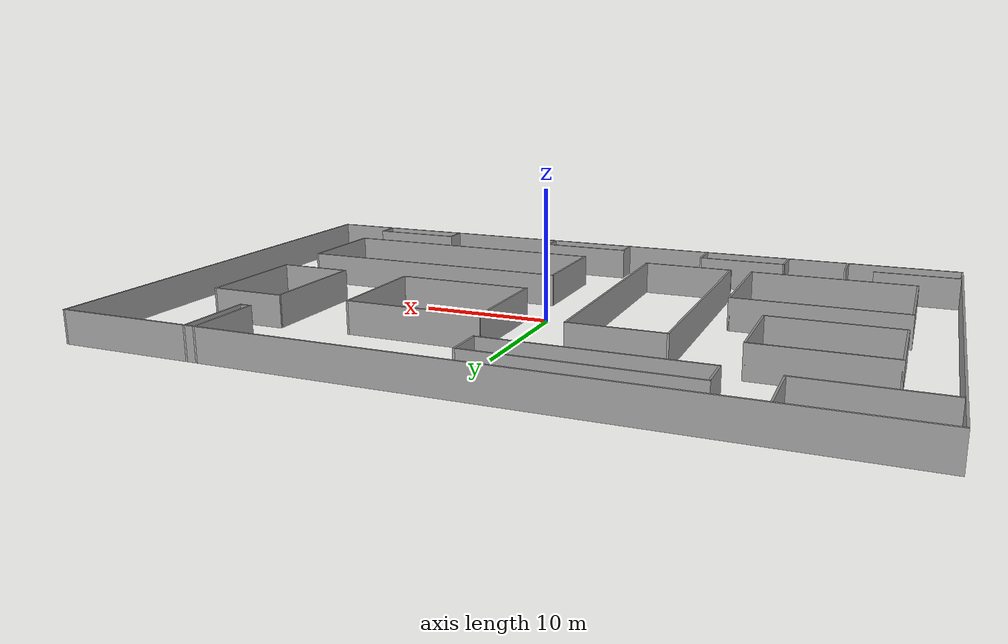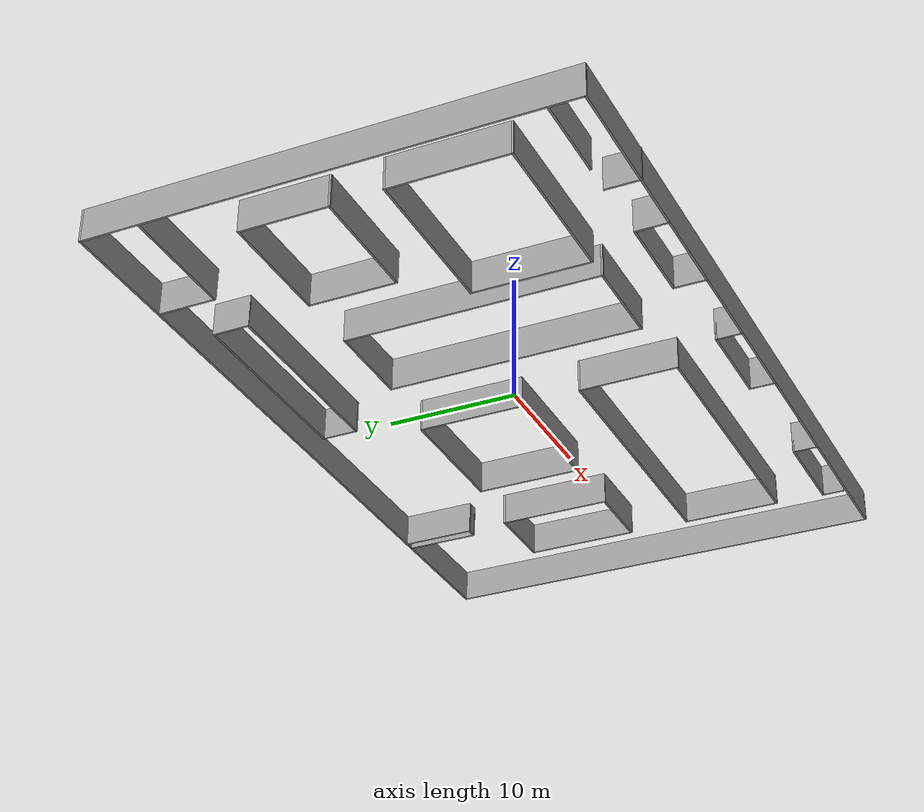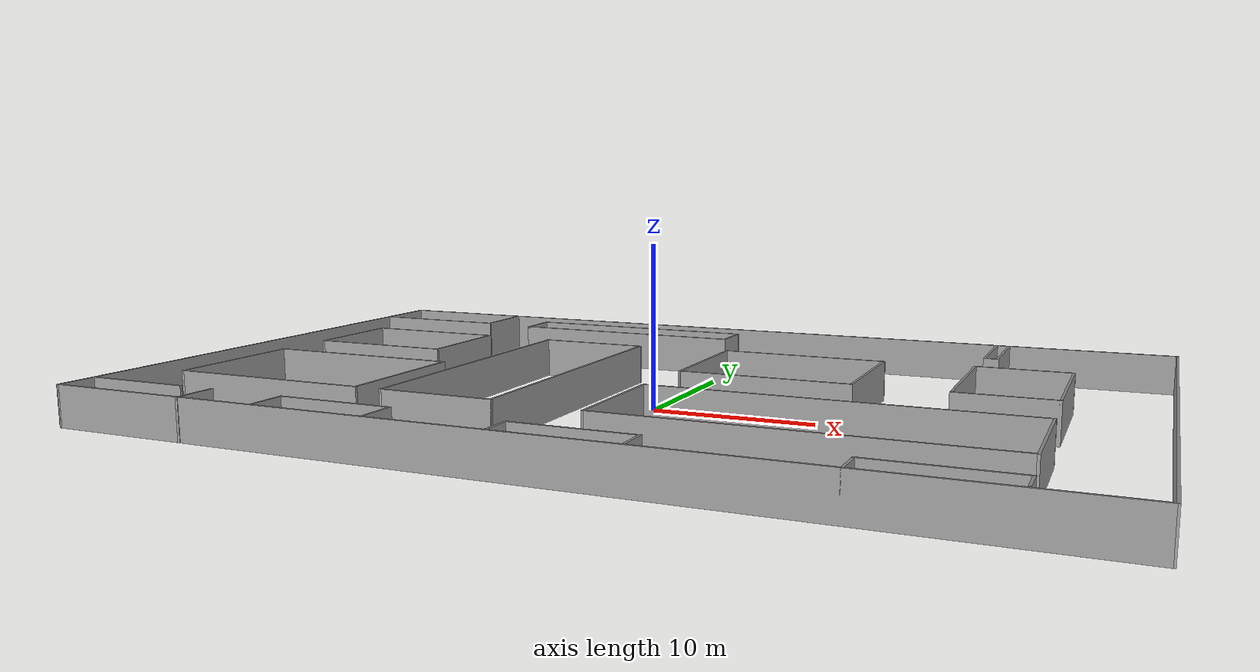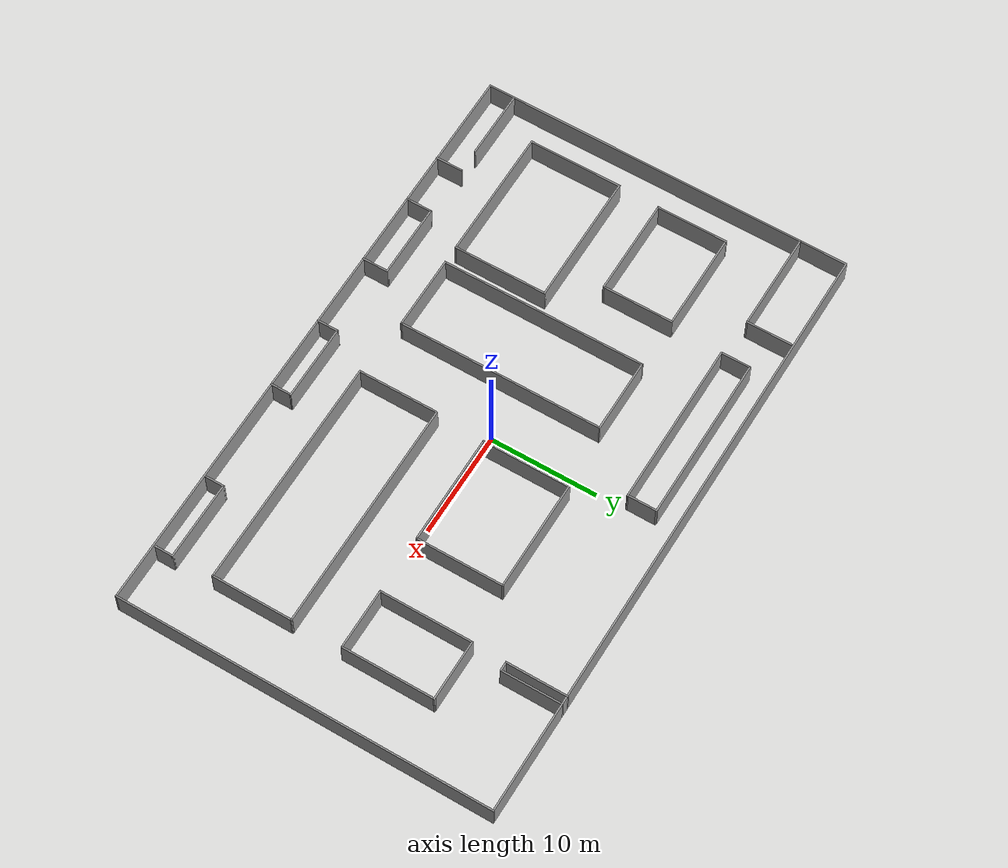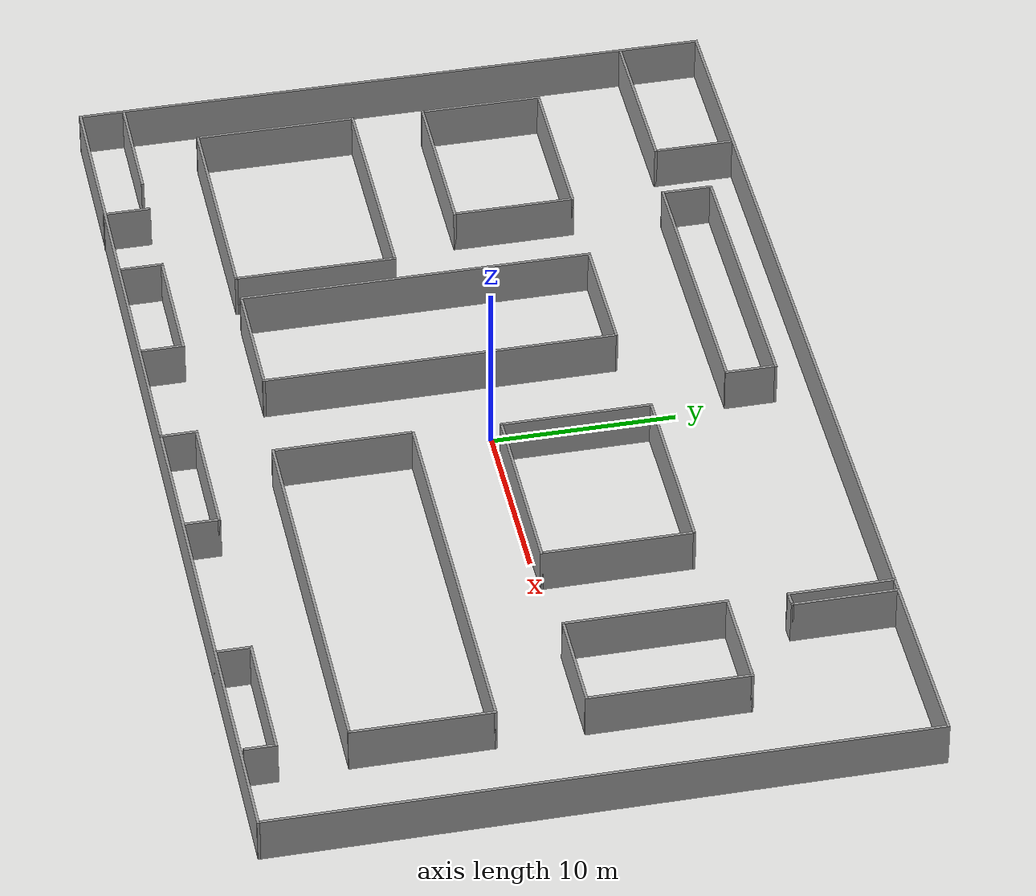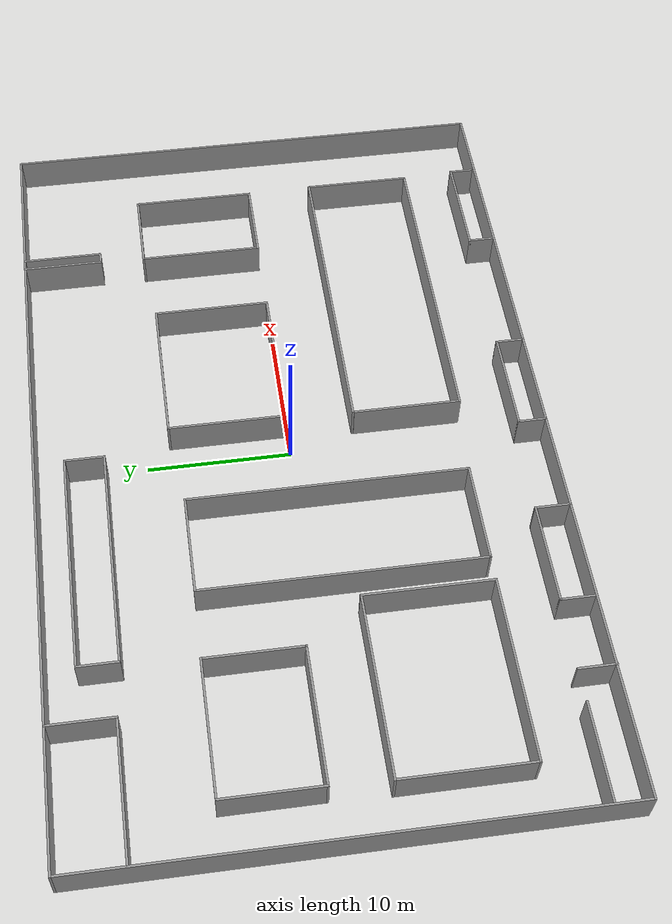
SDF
<?xml version='1.0'?>
<sdf version='1.7'>
  <model name='map_mir_multi'>
    <pose>-0.005308 -0.016489 0 0 -0 0</pose>
    <link name='Wall_0'>
      <collision name='Wall_0_Collision'>
        <geometry>
          <box>
            <size>57.75 0.15 2.5</size>
          </box>
        </geometry>
        <pose>0 0 1.25 0 -0 0</pose>
      </collision>
      <visual name='Wall_0_Visual'>
        <pose>0 0 1.25 0 -0 0</pose>
        <geometry>
          <box>
            <size>57.75 0.15 2.5</size>
          </box>
        </geometry>
        <material>
          <script>
            <uri>file://media/materials/scripts/gazebo.material</uri>
            <name>Gazebo/Grey</name>
          </script>
          <ambient>1 1 1 1</ambient>
        </material>
        <meta>
          <layer>0</layer>
        </meta>
      </visual>
      <pose>-0.005305 -17.5835 0 0 -0 0</pose>
    </link>
    <link name='Wall_1'>
      <collision name='Wall_1_Collision'>
        <geometry>
          <box>
            <size>35.35 0.15 2.5</size>
          </box>
        </geometry>
        <pose>0 0 1.25 0 -0 0</pose>
      </collision>
      <visual name='Wall_1_Visual'>
        <pose>0 0 1.25 0 -0 0</pose>
        <geometry>
          <box>
            <size>35.35 0.15 2.5</size>
          </box>
        </geometry>
        <material>
          <script>
            <uri>file://media/materials/scripts/gazebo.material</uri>
            <name>Gazebo/Grey</name>
          </script>
          <ambient>1 1 1 1</ambient>
        </material>
        <meta>
          <layer>0</layer>
        </meta>
      </visual>
      <pose>28.8 0.016489 0 0 -0 1.57049</pose>
    </link>
    <link name='Wall_10'>
      <collision name='Wall_10_Collision'>
        <geometry>
          <box>
            <size>7.15 0.15 2.5</size>
          </box>
        </geometry>
        <pose>0 0 1.25 0 -0 0</pose>
      </collision>
      <visual name='Wall_10_Visual'>
        <pose>0 0 1.25 0 -0 0</pose>
        <geometry>
          <box>
            <size>7.15 0.15 2.5</size>
          </box>
        </geometry>
        <material>
          <script>
            <uri>file://media/materials/scripts/gazebo.material</uri>
            <name>Gazebo/Grey</name>
          </script>
          <ambient>1 1 1 1</ambient>
        </material>
        <meta>
          <layer>0</layer>
        </meta>
      </visual>
      <pose>-11.5947 -15.2235 0 0 -0 0</pose>
    </link>
    <link name='Wall_11'>
      <collision name='Wall_11_Collision'>
        <geometry>
          <box>
            <size>2.5 0.15 2.5</size>
          </box>
        </geometry>
        <pose>0 0 1.25 0 -0 0</pose>
      </collision>
      <visual name='Wall_11_Visual'>
        <pose>0 0 1.25 0 -0 0</pose>
        <geometry>
          <box>
            <size>2.5 0.15 2.5</size>
          </box>
        </geometry>
        <material>
          <script>
            <uri>file://media/materials/scripts/gazebo.material</uri>
            <name>Gazebo/Grey</name>
          </script>
          <ambient>1 1 1 1</ambient>
        </material>
        <meta>
          <layer>0</layer>
        </meta>
      </visual>
      <pose>-8.09469 -16.3985 0 0 -0 -1.5708</pose>
    </link>
    <link name='Wall_13'>
      <collision name='Wall_13_Collision'>
        <geometry>
          <box>
            <size>2 0.15 2.5</size>
          </box>
        </geometry>
        <pose>0 0 1.25 0 -0 0</pose>
      </collision>
      <visual name='Wall_13_Visual'>
        <pose>0 0 1.25 0 -0 0</pose>
        <geometry>
          <box>
            <size>2 0.15 2.5</size>
          </box>
        </geometry>
        <material>
          <script>
            <uri>file://media/materials/scripts/gazebo.material</uri>
            <name>Gazebo/Grey</name>
          </script>
          <ambient>1 1 1 1</ambient>
        </material>
        <meta>
          <layer>0</layer>
        </meta>
      </visual>
      <pose>-0.994692 -16.6085 0 0 -0 1.5708</pose>
    </link>
    <link name='Wall_14'>
      <collision name='Wall_14_Collision'>
        <geometry>
          <box>
            <size>7.29 0.15 2.5</size>
          </box>
        </geometry>
        <pose>0 0 1.25 0 -0 0</pose>
      </collision>
      <visual name='Wall_14_Visual'>
        <pose>0 0 1.25 0 -0 0</pose>
        <geometry>
          <box>
            <size>7.29 0.15 2.5</size>
          </box>
        </geometry>
        <material>
          <script>
            <uri>file://media/materials/scripts/gazebo.material</uri>
            <name>Gazebo/Grey</name>
          </script>
          <ambient>1 1 1 1</ambient>
        </material>
        <meta>
          <layer>0</layer>
        </meta>
      </visual>
      <pose>2.57531 -15.6835 0 0 -0 0</pose>
    </link>
    <link name='Wall_15'>
      <collision name='Wall_15_Collision'>
        <geometry>
          <box>
            <size>2 0.15 2.5</size>
          </box>
        </geometry>
        <pose>0 0 1.25 0 -0 0</pose>
      </collision>
      <visual name='Wall_15_Visual'>
        <pose>0 0 1.25 0 -0 0</pose>
        <geometry>
          <box>
            <size>2 0.15 2.5</size>
          </box>
        </geometry>
        <material>
          <script>
            <uri>file://media/materials/scripts/gazebo.material</uri>
            <name>Gazebo/Grey</name>
          </script>
          <ambient>1 1 1 1</ambient>
        </material>
        <meta>
          <layer>0</layer>
        </meta>
      </visual>
      <pose>6.14531 -16.6085 0 0 -0 -1.5708</pose>
    </link>
    <link name='Wall_17'>
      <collision name='Wall_17_Collision'>
        <geometry>
          <box>
            <size>2 0.15 2.5</size>
          </box>
        </geometry>
        <pose>0 0 1.25 0 -0 0</pose>
      </collision>
      <visual name='Wall_17_Visual'>
        <pose>0 0 1.25 0 -0 0</pose>
        <geometry>
          <box>
            <size>2 0.15 2.5</size>
          </box>
        </geometry>
        <material>
          <script>
            <uri>file://media/materials/scripts/gazebo.material</uri>
            <name>Gazebo/Grey</name>
          </script>
          <ambient>1 1 1 1</ambient>
        </material>
        <meta>
          <layer>0</layer>
        </meta>
      </visual>
      <pose>16.1253 -16.6585 0 0 -0 1.5708</pose>
    </link>
    <link name='Wall_18'>
      <collision name='Wall_18_Collision'>
        <geometry>
          <box>
            <size>7.53 0.15 2.5</size>
          </box>
        </geometry>
        <pose>0 0 1.25 0 -0 0</pose>
      </collision>
      <visual name='Wall_18_Visual'>
        <pose>0 0 1.25 0 -0 0</pose>
        <geometry>
          <box>
            <size>7.53 0.15 2.5</size>
          </box>
        </geometry>
        <material>
          <script>
            <uri>file://media/materials/scripts/gazebo.material</uri>
            <name>Gazebo/Grey</name>
          </script>
          <ambient>1 1 1 1</ambient>
        </material>
        <meta>
          <layer>0</layer>
        </meta>
      </visual>
      <pose>19.8153 -15.7335 0 0 -0 0</pose>
    </link>
    <link name='Wall_19'>
      <collision name='Wall_19_Collision'>
        <geometry>
          <box>
            <size>1.75 0.15 2.5</size>
          </box>
        </geometry>
        <pose>0 0 1.25 0 -0 0</pose>
      </collision>
      <visual name='Wall_19_Visual'>
        <pose>0 0 1.25 0 -0 0</pose>
        <geometry>
          <box>
            <size>1.75 0.15 2.5</size>
          </box>
        </geometry>
        <material>
          <script>
            <uri>file://media/materials/scripts/gazebo.material</uri>
            <name>Gazebo/Grey</name>
          </script>
          <ambient>1 1 1 1</ambient>
        </material>
        <meta>
          <layer>0</layer>
        </meta>
      </visual>
      <pose>23.5053 -16.5335 0 0 -0 -1.5708</pose>
    </link>
    <link name='Wall_2'>
      <collision name='Wall_2_Collision'>
        <geometry>
          <box>
            <size>57.75 0.15 2.5</size>
          </box>
        </geometry>
        <pose>0 0 1.25 0 -0 0</pose>
      </collision>
      <visual name='Wall_2_Visual'>
        <pose>0 0 1.25 0 -0 0</pose>
        <geometry>
          <box>
            <size>57.75 0.15 2.5</size>
          </box>
        </geometry>
        <material>
          <script>
            <uri>file://media/materials/scripts/gazebo.material</uri>
            <name>Gazebo/Grey</name>
          </script>
          <ambient>1 1 1 1</ambient>
        </material>
        <meta>
          <layer>0</layer>
        </meta>
      </visual>
      <pose>0.005308 17.6165 0 0 -0 3.14159</pose>
    </link>
    <link name='Wall_21'>
      <collision name='Wall_21_Collision'>
        <geometry>
          <box>
            <size>7.5 0.15 2.5</size>
          </box>
        </geometry>
        <pose>0 0 1.25 0 -0 0</pose>
      </collision>
      <visual name='Wall_21_Visual'>
        <pose>0 0 1.25 0 -0 0</pose>
        <geometry>
          <box>
            <size>7.5 0.15 2.5</size>
          </box>
        </geometry>
        <material>
          <script>
            <uri>file://media/materials/scripts/gazebo.material</uri>
            <name>Gazebo/Grey</name>
          </script>
          <ambient>1 1 1 1</ambient>
        </material>
        <meta>
          <layer>0</layer>
        </meta>
      </visual>
      <pose>1.30531 -8.30851 0 0 -0 -1.5708</pose>
    </link>
    <link name='Wall_22'>
      <collision name='Wall_22_Collision'>
        <geometry>
          <box>
            <size>22.15 0.15 2.5</size>
          </box>
        </geometry>
        <pose>0 0 1.25 0 -0 0</pose>
      </collision>
      <visual name='Wall_22_Visual'>
        <pose>0 0 1.25 0 -0 0</pose>
        <geometry>
          <box>
            <size>22.15 0.15 2.5</size>
          </box>
        </geometry>
        <material>
          <script>
            <uri>file://media/materials/scripts/gazebo.material</uri>
            <name>Gazebo/Grey</name>
          </script>
          <ambient>1 1 1 1</ambient>
        </material>
        <meta>
          <layer>0</layer>
        </meta>
      </visual>
      <pose>12.3053 -11.9835 0 0 -0 0</pose>
    </link>
    <link name='Wall_23'>
      <collision name='Wall_23_Collision'>
        <geometry>
          <box>
            <size>7.65 0.15 2.5</size>
          </box>
        </geometry>
        <pose>0 0 1.25 0 -0 0</pose>
      </collision>
      <visual name='Wall_23_Visual'>
        <pose>0 0 1.25 0 -0 0</pose>
        <geometry>
          <box>
            <size>7.65 0.15 2.5</size>
          </box>
        </geometry>
        <material>
          <script>
            <uri>file://media/materials/scripts/gazebo.material</uri>
            <name>Gazebo/Grey</name>
          </script>
          <ambient>1 1 1 1</ambient>
        </material>
        <meta>
          <layer>0</layer>
        </meta>
      </visual>
      <pose>23.3053 -8.23351 0 0 -0 1.5708</pose>
    </link>
    <link name='Wall_24'>
      <collision name='Wall_24_Collision'>
        <geometry>
          <box>
            <size>22.11 0.15 2.5</size>
          </box>
        </geometry>
        <pose>0 0 1.25 0 -0 0</pose>
      </collision>
      <visual name='Wall_24_Visual'>
        <pose>0 0 1.25 0 -0 0</pose>
        <geometry>
          <box>
            <size>22.11 0.15 2.5</size>
          </box>
        </geometry>
        <material>
          <script>
            <uri>file://media/materials/scripts/gazebo.material</uri>
            <name>Gazebo/Grey</name>
          </script>
          <ambient>1 1 1 1</ambient>
        </material>
        <meta>
          <layer>0</layer>
        </meta>
      </visual>
      <pose>12.3253 -4.48351 0 0 -0 3.14159</pose>
    </link>
    <link name='Wall_26'>
      <collision name='Wall_26_Collision'>
        <geometry>
          <box>
            <size>8.25 0.15 2.5</size>
          </box>
        </geometry>
        <pose>0 0 1.25 0 -0 0</pose>
      </collision>
      <visual name='Wall_26_Visual'>
        <pose>0 0 1.25 0 -0 0</pose>
        <geometry>
          <box>
            <size>8.25 0.15 2.5</size>
          </box>
        </geometry>
        <material>
          <script>
            <uri>file://media/materials/scripts/gazebo.material</uri>
            <name>Gazebo/Grey</name>
          </script>
          <ambient>1 1 1 1</ambient>
        </material>
        <meta>
          <layer>0</layer>
        </meta>
      </visual>
      <pose>1.60531 4.26649 0 0 -0 -1.5708</pose>
    </link>
    <link name='Wall_27'>
      <collision name='Wall_27_Collision'>
        <geometry>
          <box>
            <size>10.55 0.15 2.5</size>
          </box>
        </geometry>
        <pose>0 0 1.25 0 -0 0</pose>
      </collision>
      <visual name='Wall_27_Visual'>
        <pose>0 0 1.25 0 -0 0</pose>
        <geometry>
          <box>
            <size>10.55 0.15 2.5</size>
          </box>
        </geometry>
        <material>
          <script>
            <uri>file://media/materials/scripts/gazebo.material</uri>
            <name>Gazebo/Grey</name>
          </script>
          <ambient>1 1 1 1</ambient>
        </material>
        <meta>
          <layer>0</layer>
        </meta>
      </visual>
      <pose>6.80531 0.216489 0 0 -0 0</pose>
    </link>
    <link name='Wall_28'>
      <collision name='Wall_28_Collision'>
        <geometry>
          <box>
            <size>8.25 0.15 2.5</size>
          </box>
        </geometry>
        <pose>0 0 1.25 0 -0 0</pose>
      </collision>
      <visual name='Wall_28_Visual'>
        <pose>0 0 1.25 0 -0 0</pose>
        <geometry>
          <box>
            <size>8.25 0.15 2.5</size>
          </box>
        </geometry>
        <material>
          <script>
            <uri>file://media/materials/scripts/gazebo.material</uri>
            <name>Gazebo/Grey</name>
          </script>
          <ambient>1 1 1 1</ambient>
        </material>
        <meta>
          <layer>0</layer>
        </meta>
      </visual>
      <pose>12.0053 4.26649 0 0 -0 1.5708</pose>
    </link>
    <link name='Wall_29'>
      <collision name='Wall_29_Collision'>
        <geometry>
          <box>
            <size>10.55 0.15 2.5</size>
          </box>
        </geometry>
        <pose>0 0 1.25 0 -0 0</pose>
      </collision>
      <visual name='Wall_29_Visual'>
        <pose>0 0 1.25 0 -0 0</pose>
        <geometry>
          <box>
            <size>10.55 0.15 2.5</size>
          </box>
        </geometry>
        <material>
          <script>
            <uri>file://media/materials/scripts/gazebo.material</uri>
            <name>Gazebo/Grey</name>
          </script>
          <ambient>1 1 1 1</ambient>
        </material>
        <meta>
          <layer>0</layer>
        </meta>
      </visual>
      <pose>6.80531 8.31649 0 0 -0 3.14159</pose>
    </link>
    <link name='Wall_3'>
      <collision name='Wall_3_Collision'>
        <geometry>
          <box>
            <size>35.35 0.15 2.5</size>
          </box>
        </geometry>
        <pose>0 0 1.25 0 -0 0</pose>
      </collision>
      <visual name='Wall_3_Visual'>
        <pose>0 0 1.25 0 -0 0</pose>
        <geometry>
          <box>
            <size>35.35 0.15 2.5</size>
          </box>
        </geometry>
        <material>
          <script>
            <uri>file://media/materials/scripts/gazebo.material</uri>
            <name>Gazebo/Grey</name>
          </script>
          <ambient>1 1 1 1</ambient>
        </material>
        <meta>
          <layer>0</layer>
        </meta>
      </visual>
      <pose>-28.8 0.016489 0 0 -0 -1.5711</pose>
    </link>
    <link name='Wall_31'>
      <collision name='Wall_31_Collision'>
        <geometry>
          <box>
            <size>8.75 0.15 2.5</size>
          </box>
        </geometry>
        <pose>0 0 1.25 0 -0 0</pose>
      </collision>
      <visual name='Wall_31_Visual'>
        <pose>0 0 1.25 0 -0 0</pose>
        <geometry>
          <box>
            <size>8.75 0.15 2.5</size>
          </box>
        </geometry>
        <material>
          <script>
            <uri>file://media/materials/scripts/gazebo.material</uri>
            <name>Gazebo/Grey</name>
          </script>
          <ambient>1 1 1 1</ambient>
        </material>
        <meta>
          <layer>0</layer>
        </meta>
      </visual>
      <pose>17.5053 4.51649 0 0 -0 -1.5708</pose>
    </link>
    <link name='Wall_32'>
      <collision name='Wall_32_Collision'>
        <geometry>
          <box>
            <size>5.85 0.15 2.5</size>
          </box>
        </geometry>
        <pose>0 0 1.25 0 -0 0</pose>
      </collision>
      <visual name='Wall_32_Visual'>
        <pose>0 0 1.25 0 -0 0</pose>
        <geometry>
          <box>
            <size>5.85 0.15 2.5</size>
          </box>
        </geometry>
        <material>
          <script>
            <uri>file://media/materials/scripts/gazebo.material</uri>
            <name>Gazebo/Grey</name>
          </script>
          <ambient>1 1 1 1</ambient>
        </material>
        <meta>
          <layer>0</layer>
        </meta>
      </visual>
      <pose>20.3553 0.216489 0 0 -0 0</pose>
    </link>
    <link name='Wall_33'>
      <collision name='Wall_33_Collision'>
        <geometry>
          <box>
            <size>8.75 0.15 2.5</size>
          </box>
        </geometry>
        <pose>0 0 1.25 0 -0 0</pose>
      </collision>
      <visual name='Wall_33_Visual'>
        <pose>0 0 1.25 0 -0 0</pose>
        <geometry>
          <box>
            <size>8.75 0.15 2.5</size>
          </box>
        </geometry>
        <material>
          <script>
            <uri>file://media/materials/scripts/gazebo.material</uri>
            <name>Gazebo/Grey</name>
          </script>
          <ambient>1 1 1 1</ambient>
        </material>
        <meta>
          <layer>0</layer>
        </meta>
      </visual>
      <pose>23.2053 4.51649 0 0 -0 1.5708</pose>
    </link>
    <link name='Wall_34'>
      <collision name='Wall_34_Collision'>
        <geometry>
          <box>
            <size>5.85 0.15 2.5</size>
          </box>
        </geometry>
        <pose>0 0 1.25 0 -0 0</pose>
      </collision>
      <visual name='Wall_34_Visual'>
        <pose>0 0 1.25 0 -0 0</pose>
        <geometry>
          <box>
            <size>5.85 0.15 2.5</size>
          </box>
        </geometry>
        <material>
          <script>
            <uri>file://media/materials/scripts/gazebo.material</uri>
            <name>Gazebo/Grey</name>
          </script>
          <ambient>1 1 1 1</ambient>
        </material>
        <meta>
          <layer>0</layer>
        </meta>
      </visual>
      <pose>20.3553 8.81649 0 0 -0 3.14159</pose>
    </link>
    <link name='Wall_36'>
      <collision name='Wall_36_Collision'>
        <geometry>
          <box>
            <size>19.25 0.15 2.5</size>
          </box>
        </geometry>
        <pose>0 0 1.25 0 -0 0</pose>
      </collision>
      <visual name='Wall_36_Visual'>
        <pose>0 0 1.25 0 -0 0</pose>
        <geometry>
          <box>
            <size>19.25 0.15 2.5</size>
          </box>
        </geometry>
        <material>
          <script>
            <uri>file://media/materials/scripts/gazebo.material</uri>
            <name>Gazebo/Grey</name>
          </script>
          <ambient>1 1 1 1</ambient>
        </material>
        <meta>
          <layer>0</layer>
        </meta>
      </visual>
      <pose>-4.39469 -1.93351 0 0 -0 -1.5708</pose>
    </link>
    <link name='Wall_37'>
      <collision name='Wall_37_Collision'>
        <geometry>
          <box>
            <size>7.15 0.15 2.5</size>
          </box>
        </geometry>
        <pose>0 0 1.25 0 -0 0</pose>
      </collision>
      <visual name='Wall_37_Visual'>
        <pose>0 0 1.25 0 -0 0</pose>
        <geometry>
          <box>
            <size>7.15 0.15 2.5</size>
          </box>
        </geometry>
        <material>
          <script>
            <uri>file://media/materials/scripts/gazebo.material</uri>
            <name>Gazebo/Grey</name>
          </script>
          <ambient>1 1 1 1</ambient>
        </material>
        <meta>
          <layer>0</layer>
        </meta>
      </visual>
      <pose>-7.89469 -11.4835 0 0 -0 3.14159</pose>
    </link>
    <link name='Wall_38'>
      <collision name='Wall_38_Collision'>
        <geometry>
          <box>
            <size>19.3503 0.15 2.5</size>
          </box>
        </geometry>
        <pose>0 0 1.25 0 -0 0</pose>
      </collision>
      <visual name='Wall_38_Visual'>
        <pose>0 0 1.25 0 -0 0</pose>
        <geometry>
          <box>
            <size>19.3503 0.15 2.5</size>
          </box>
        </geometry>
        <material>
          <script>
            <uri>file://media/materials/scripts/gazebo.material</uri>
            <name>Gazebo/Grey</name>
          </script>
          <ambient>1 1 1 1</ambient>
        </material>
        <meta>
          <layer>0</layer>
        </meta>
      </visual>
      <pose>-11.3947 -1.88351 0 0 -0 1.5708</pose>
    </link>
    <link name='Wall_39'>
      <collision name='Wall_39_Collision'>
        <geometry>
          <box>
            <size>7.15 0.15 2.5</size>
          </box>
        </geometry>
        <pose>0 0 1.25 0 -0 0</pose>
      </collision>
      <visual name='Wall_39_Visual'>
        <pose>0 0 1.25 0 -0 0</pose>
        <geometry>
          <box>
            <size>7.15 0.15 2.5</size>
          </box>
        </geometry>
        <material>
          <script>
            <uri>file://media/materials/scripts/gazebo.material</uri>
            <name>Gazebo/Grey</name>
          </script>
          <ambient>1 1 1 1</ambient>
        </material>
        <meta>
          <layer>0</layer>
        </meta>
      </visual>
      <pose>-7.89469 7.71649 0 0 -0 0</pose>
    </link>
    <link name='Wall_41'>
      <collision name='Wall_41_Collision'>
        <geometry>
          <box>
            <size>9.4 0.15 2.5</size>
          </box>
        </geometry>
        <pose>0 0 1.25 0 -0 0</pose>
      </collision>
      <visual name='Wall_41_Visual'>
        <pose>0 0 1.25 0 -0 0</pose>
        <geometry>
          <box>
            <size>9.4 0.15 2.5</size>
          </box>
        </geometry>
        <material>
          <script>
            <uri>file://media/materials/scripts/gazebo.material</uri>
            <name>Gazebo/Grey</name>
          </script>
          <ambient>1 1 1 1</ambient>
        </material>
        <meta>
          <layer>0</layer>
        </meta>
      </visual>
      <pose>-20.8697 7.81649 0 0 -0 0</pose>
    </link>
    <link name='Wall_42'>
      <collision name='Wall_42_Collision'>
        <geometry>
          <box>
            <size>6.75 0.15 2.5</size>
          </box>
        </geometry>
        <pose>0 0 1.25 0 -0 0</pose>
      </collision>
      <visual name='Wall_42_Visual'>
        <pose>0 0 1.25 0 -0 0</pose>
        <geometry>
          <box>
            <size>6.75 0.15 2.5</size>
          </box>
        </geometry>
        <material>
          <script>
            <uri>file://media/materials/scripts/gazebo.material</uri>
            <name>Gazebo/Grey</name>
          </script>
          <ambient>1 1 1 1</ambient>
        </material>
        <meta>
          <layer>0</layer>
        </meta>
      </visual>
      <pose>-16.2447 4.51649 0 0 -0 -1.5708</pose>
    </link>
    <link name='Wall_43'>
      <collision name='Wall_43_Collision'>
        <geometry>
          <box>
            <size>9.4 0.15 2.5</size>
          </box>
        </geometry>
        <pose>0 0 1.25 0 -0 0</pose>
      </collision>
      <visual name='Wall_43_Visual'>
        <pose>0 0 1.25 0 -0 0</pose>
        <geometry>
          <box>
            <size>9.4 0.15 2.5</size>
          </box>
        </geometry>
        <material>
          <script>
            <uri>file://media/materials/scripts/gazebo.material</uri>
            <name>Gazebo/Grey</name>
          </script>
          <ambient>1 1 1 1</ambient>
        </material>
        <meta>
          <layer>0</layer>
        </meta>
      </visual>
      <pose>-20.8697 1.21649 0 0 -0 3.14159</pose>
    </link>
    <link name='Wall_44'>
      <collision name='Wall_44_Collision'>
        <geometry>
          <box>
            <size>6.75 0.15 2.5</size>
          </box>
        </geometry>
        <pose>0 0 1.25 0 -0 0</pose>
      </collision>
      <visual name='Wall_44_Visual'>
        <pose>0 0 1.25 0 -0 0</pose>
        <geometry>
          <box>
            <size>6.75 0.15 2.5</size>
          </box>
        </geometry>
        <material>
          <script>
            <uri>file://media/materials/scripts/gazebo.material</uri>
            <name>Gazebo/Grey</name>
          </script>
          <ambient>1 1 1 1</ambient>
        </material>
        <meta>
          <layer>0</layer>
        </meta>
      </visual>
      <pose>-25.4947 4.51649 0 0 -0 1.5708</pose>
    </link>
    <link name='Wall_46'>
      <collision name='Wall_46_Collision'>
        <geometry>
          <box>
            <size>12.69 0.15 2.5</size>
          </box>
        </geometry>
        <pose>0 0 1.25 0 -0 0</pose>
      </collision>
      <visual name='Wall_46_Visual'>
        <pose>0 0 1.25 0 -0 0</pose>
        <geometry>
          <box>
            <size>12.69 0.15 2.5</size>
          </box>
        </geometry>
        <material>
          <script>
            <uri>file://media/materials/scripts/gazebo.material</uri>
            <name>Gazebo/Grey</name>
          </script>
          <ambient>1 1 1 1</ambient>
        </material>
        <meta>
          <layer>0</layer>
        </meta>
      </visual>
      <pose>-19.3847 -2.73351 0 0 -0 0</pose>
    </link>
    <link name='Wall_47'>
      <collision name='Wall_47_Collision'>
        <geometry>
          <box>
            <size>8.9 0.15 2.5</size>
          </box>
        </geometry>
        <pose>0 0 1.25 0 -0 0</pose>
      </collision>
      <visual name='Wall_47_Visual'>
        <pose>0 0 1.25 0 -0 0</pose>
        <geometry>
          <box>
            <size>8.9 0.15 2.5</size>
          </box>
        </geometry>
        <material>
          <script>
            <uri>file://media/materials/scripts/gazebo.material</uri>
            <name>Gazebo/Grey</name>
          </script>
          <ambient>1 1 1 1</ambient>
        </material>
        <meta>
          <layer>0</layer>
        </meta>
      </visual>
      <pose>-13.1147 -7.10851 0 0 -0 -1.5708</pose>
    </link>
    <link name='Wall_48'>
      <collision name='Wall_48_Collision'>
        <geometry>
          <box>
            <size>12.69 0.15 2.5</size>
          </box>
        </geometry>
        <pose>0 0 1.25 0 -0 0</pose>
      </collision>
      <visual name='Wall_48_Visual'>
        <pose>0 0 1.25 0 -0 0</pose>
        <geometry>
          <box>
            <size>12.69 0.15 2.5</size>
          </box>
        </geometry>
        <material>
          <script>
            <uri>file://media/materials/scripts/gazebo.material</uri>
            <name>Gazebo/Grey</name>
          </script>
          <ambient>1 1 1 1</ambient>
        </material>
        <meta>
          <layer>0</layer>
        </meta>
      </visual>
      <pose>-19.3847 -11.4835 0 0 -0 3.14159</pose>
    </link>
    <link name='Wall_49'>
      <collision name='Wall_49_Collision'>
        <geometry>
          <box>
            <size>8.75 0.15 2.5</size>
          </box>
        </geometry>
        <pose>0 0 1.25 0 -0 0</pose>
      </collision>
      <visual name='Wall_49_Visual'>
        <pose>0 0 1.25 0 -0 0</pose>
        <geometry>
          <box>
            <size>8.75 0.15 2.5</size>
          </box>
        </geometry>
        <material>
          <script>
            <uri>file://media/materials/scripts/gazebo.material</uri>
            <name>Gazebo/Grey</name>
          </script>
          <ambient>1 1 1 1</ambient>
        </material>
        <meta>
          <layer>0</layer>
        </meta>
      </visual>
      <pose>-25.6547 -7.18351 0 0 -0 1.5708</pose>
    </link>
    <link name='Wall_5'>
      <collision name='Wall_5_Collision'>
        <geometry>
          <box>
            <size>6.58 0.15 2.5</size>
          </box>
        </geometry>
        <pose>0 0 1.25 0 -0 0</pose>
      </collision>
      <visual name='Wall_5_Visual'>
        <pose>0 0 1.25 0 -0 0</pose>
        <geometry>
          <box>
            <size>6.58 0.15 2.5</size>
          </box>
        </geometry>
        <material>
          <script>
            <uri>file://media/materials/scripts/gazebo.material</uri>
            <name>Gazebo/Grey</name>
          </script>
          <ambient>1 1 1 1</ambient>
        </material>
        <meta>
          <layer>0</layer>
        </meta>
      </visual>
      <pose>-25.4697 -15.1535 0 0 -0 0</pose>
    </link>
    <link name='Wall_51'>
      <collision name='Wall_51_Collision'>
        <geometry>
          <box>
            <size>4.5 0.15 2.5</size>
          </box>
        </geometry>
        <pose>0 0 1.25 0 -0 0</pose>
      </collision>
      <visual name='Wall_51_Visual'>
        <pose>0 0 1.25 0 -0 0</pose>
        <geometry>
          <box>
            <size>4.5 0.15 2.5</size>
          </box>
        </geometry>
        <material>
          <script>
            <uri>file://media/materials/scripts/gazebo.material</uri>
            <name>Gazebo/Grey</name>
          </script>
          <ambient>1 1 1 1</ambient>
        </material>
        <meta>
          <layer>0</layer>
        </meta>
      </visual>
      <pose>-19.4947 15.3915 0 0 -0 -1.5708</pose>
    </link>
    <link name='Wall_52'>
      <collision name='Wall_52_Collision'>
        <geometry>
          <box>
            <size>9.351 0.15 2.5</size>
          </box>
        </geometry>
        <pose>0 0 1.25 0 -0 0</pose>
      </collision>
      <visual name='Wall_52_Visual'>
        <pose>0 0 1.25 0 -0 0</pose>
        <geometry>
          <box>
            <size>9.351 0.15 2.5</size>
          </box>
        </geometry>
        <material>
          <script>
            <uri>file://media/materials/scripts/gazebo.material</uri>
            <name>Gazebo/Grey</name>
          </script>
          <ambient>1 1 1 1</ambient>
        </material>
        <meta>
          <layer>0</layer>
        </meta>
      </visual>
      <pose>-24.0952 13.2165 0 0 -0 3.14159</pose>
    </link>
    <link name='Wall_54'>
      <collision name='Wall_54_Collision'>
        <geometry>
          <box>
            <size>2.85 0.15 2.5</size>
          </box>
        </geometry>
        <pose>0 0 1.25 0 -0 0</pose>
      </collision>
      <visual name='Wall_54_Visual'>
        <pose>0 0 1.25 0 -0 0</pose>
        <geometry>
          <box>
            <size>2.85 0.15 2.5</size>
          </box>
        </geometry>
        <material>
          <script>
            <uri>file://media/materials/scripts/gazebo.material</uri>
            <name>Gazebo/Grey</name>
          </script>
          <ambient>1 1 1 1</ambient>
        </material>
        <meta>
          <layer>0</layer>
        </meta>
      </visual>
      <pose>-15.7947 14.1665 0 0 -0 -1.5708</pose>
    </link>
    <link name='Wall_55'>
      <collision name='Wall_55_Collision'>
        <geometry>
          <box>
            <size>15.75 0.15 2.5</size>
          </box>
        </geometry>
        <pose>0 0 1.25 0 -0 0</pose>
      </collision>
      <visual name='Wall_55_Visual'>
        <pose>0 0 1.25 0 -0 0</pose>
        <geometry>
          <box>
            <size>15.75 0.15 2.5</size>
          </box>
        </geometry>
        <material>
          <script>
            <uri>file://media/materials/scripts/gazebo.material</uri>
            <name>Gazebo/Grey</name>
          </script>
          <ambient>1 1 1 1</ambient>
        </material>
        <meta>
          <layer>0</layer>
        </meta>
      </visual>
      <pose>-7.99469 12.8165 0 0 -0 0</pose>
    </link>
    <link name='Wall_56'>
      <collision name='Wall_56_Collision'>
        <geometry>
          <box>
            <size>2.85 0.15 2.5</size>
          </box>
        </geometry>
        <pose>0 0 1.25 0 -0 0</pose>
      </collision>
      <visual name='Wall_56_Visual'>
        <pose>0 0 1.25 0 -0 0</pose>
        <geometry>
          <box>
            <size>2.85 0.15 2.5</size>
          </box>
        </geometry>
        <material>
          <script>
            <uri>file://media/materials/scripts/gazebo.material</uri>
            <name>Gazebo/Grey</name>
          </script>
          <ambient>1 1 1 1</ambient>
        </material>
        <meta>
          <layer>0</layer>
        </meta>
      </visual>
      <pose>-0.194692 14.1665 0 0 -0 1.5708</pose>
    </link>
    <link name='Wall_57'>
      <collision name='Wall_57_Collision'>
        <geometry>
          <box>
            <size>15.75 0.15 2.5</size>
          </box>
        </geometry>
        <pose>0 0 1.25 0 -0 0</pose>
      </collision>
      <visual name='Wall_57_Visual'>
        <pose>0 0 1.25 0 -0 0</pose>
        <geometry>
          <box>
            <size>15.75 0.15 2.5</size>
          </box>
        </geometry>
        <material>
          <script>
            <uri>file://media/materials/scripts/gazebo.material</uri>
            <name>Gazebo/Grey</name>
          </script>
          <ambient>1 1 1 1</ambient>
        </material>
        <meta>
          <layer>0</layer>
        </meta>
      </visual>
      <pose>-7.99469 15.5165 0 0 -0 3.14159</pose>
    </link>
    <link name='Wall_59'>
      <collision name='Wall_59_Collision'>
        <geometry>
          <box>
            <size>5.75 0.15 2.5</size>
          </box>
        </geometry>
        <pose>0 0 1.25 0 -0 0</pose>
      </collision>
      <visual name='Wall_59_Visual'>
        <pose>0 0 1.25 0 -0 0</pose>
        <geometry>
          <box>
            <size>5.75 0.15 2.5</size>
          </box>
        </geometry>
        <material>
          <script>
            <uri>file://media/materials/scripts/gazebo.material</uri>
            <name>Gazebo/Grey</name>
          </script>
          <ambient>1 1 1 1</ambient>
        </material>
        <meta>
          <layer>0</layer>
        </meta>
      </visual>
      <pose>17.6053 14.8165 0 0 -0 -1.5708</pose>
    </link>
    <link name='Wall_60'>
      <collision name='Wall_60_Collision'>
        <geometry>
          <box>
            <size>0.95 0.15 2.5</size>
          </box>
        </geometry>
        <pose>0 0 1.25 0 -0 0</pose>
      </collision>
      <visual name='Wall_60_Visual'>
        <pose>0 0 1.25 0 -0 0</pose>
        <geometry>
          <box>
            <size>0.95 0.15 2.5</size>
          </box>
        </geometry>
        <material>
          <script>
            <uri>file://media/materials/scripts/gazebo.material</uri>
            <name>Gazebo/Grey</name>
          </script>
          <ambient>1 1 1 1</ambient>
        </material>
        <meta>
          <layer>0</layer>
        </meta>
      </visual>
      <pose>18.0053 12.0165 0 0 -0 0</pose>
    </link>
    <link name='Wall_61'>
      <collision name='Wall_61_Collision'>
        <geometry>
          <box>
            <size>5.75 0.15 2.5</size>
          </box>
        </geometry>
        <pose>0 0 1.25 0 -0 0</pose>
      </collision>
      <visual name='Wall_61_Visual'>
        <pose>0 0 1.25 0 -0 0</pose>
        <geometry>
          <box>
            <size>5.75 0.15 2.5</size>
          </box>
        </geometry>
        <material>
          <script>
            <uri>file://media/materials/scripts/gazebo.material</uri>
            <name>Gazebo/Grey</name>
          </script>
          <ambient>1 1 1 1</ambient>
        </material>
        <meta>
          <layer>0</layer>
        </meta>
      </visual>
      <pose>18.4053 14.8165 0 0 -0 1.5708</pose>
    </link>
    <link name='Wall_7'>
      <collision name='Wall_7_Collision'>
        <geometry>
          <box>
            <size>2.613 0.15 2.5</size>
          </box>
        </geometry>
        <pose>0 0 1.25 0 -0 0</pose>
      </collision>
      <visual name='Wall_7_Visual'>
        <pose>0 0 1.25 0 -0 0</pose>
        <geometry>
          <box>
            <size>2.613 0.15 2.5</size>
          </box>
        </geometry>
        <material>
          <script>
            <uri>file://media/materials/scripts/gazebo.material</uri>
            <name>Gazebo/Grey</name>
          </script>
          <ambient>1 1 1 1</ambient>
        </material>
        <meta>
          <layer>0</layer>
        </meta>
      </visual>
      <pose>-19.9947 -16.385 0 0 -0 1.5708</pose>
    </link>
    <link name='Wall_9'>
      <collision name='Wall_9_Collision'>
        <geometry>
          <box>
            <size>2.5 0.15 2.5</size>
          </box>
        </geometry>
        <pose>0 0 1.25 0 -0 0</pose>
      </collision>
      <visual name='Wall_9_Visual'>
        <pose>0 0 1.25 0 -0 0</pose>
        <geometry>
          <box>
            <size>2.5 0.15 2.5</size>
          </box>
        </geometry>
        <material>
          <script>
            <uri>file://media/materials/scripts/gazebo.material</uri>
            <name>Gazebo/Grey</name>
          </script>
          <ambient>1 1 1 1</ambient>
        </material>
        <meta>
          <layer>0</layer>
        </meta>
      </visual>
      <pose>-15.0947 -16.3985 0 0 -0 1.5708</pose>
    </link>
    <static>1</static>
  </model>
</sdf>
